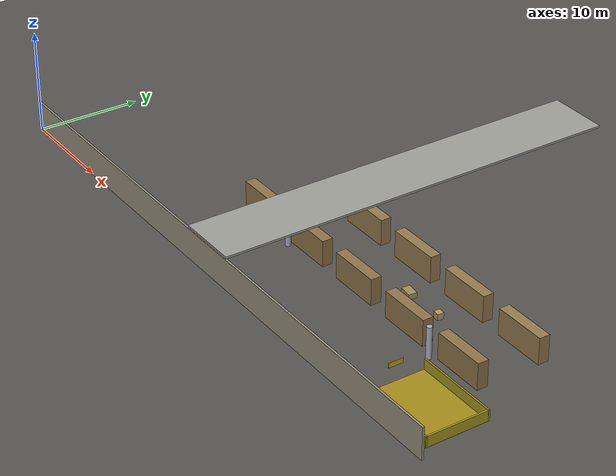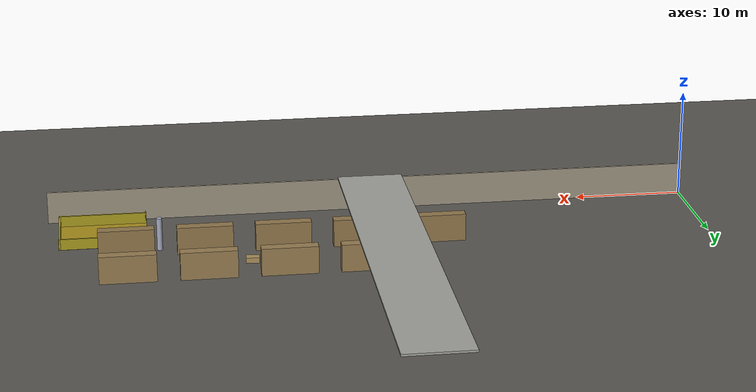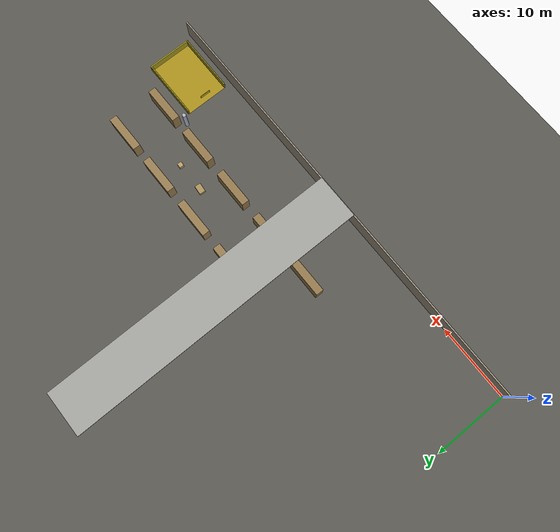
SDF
<sdf version="1.8">
 <world name="warehouse">
  <model name="ground_plane">
   <static>true</static>
   <link name="link">
    <collision name="c">
     <geometry><plane><normal>0 0 1</normal><size>80 60</size></plane></geometry>
     <surface>
      <friction>
       <ode><mu>0.6</mu><mu2>0.5</mu2><slip1>0.003</slip1><slip2>0.003</slip2><fdir1>1 0 0</fdir1></ode>
      </friction>
      <contact><ode><kp>1e6</kp><kd>100.0</kd><max_vel>0.1</max_vel><min_depth>0.001</min_depth></ode></contact>
     </surface>
    </collision>
    <visual name="v">
     <geometry><plane><normal>0 0 1</normal><size>80 60</size></plane></geometry>
     <material><ambient>0.32 0.31 0.29 1</ambient><diffuse>0.34 0.33 0.31 1</diffuse></material>
    </visual>
   </link>
  </model>
  <model name="wall_south">
   <static>true</static>
   <pose>30 0 1.5 0 0 0</pose>
   <link name="link">
    <collision name="c"><geometry><box><size>60 0.2 3.0</size></box></geometry></collision>
    <visual name="v">
     <geometry><box><size>60 0.2 3.0</size></box></geometry>
     <material><ambient>0.58 0.55 0.48 1</ambient><diffuse>0.60 0.57 0.50 1</diffuse></material>
    </visual>
   </link>
  </model>
  <model name="col_s2">
   <static>true</static>
   <pose>30 8 1.5 0 0 0</pose>
   <link name="link">
    <collision name="c">
     <geometry><cylinder><radius>0.25</radius><length>3.0</length></cylinder></geometry>
    </collision>
    <visual name="v">
     <geometry><cylinder><radius>0.25</radius><length>3.0</length></cylinder></geometry>
     <material><ambient>0.60 0.62 0.70 1</ambient><diffuse>0.65 0.67 0.75 1</diffuse></material>
    </visual>
   </link>
  </model>
  <model name="col_s3">
   <static>true</static>
   <pose>50 8 1.5 0 0 0</pose>
   <link name="link">
    <collision name="c">
     <geometry><cylinder><radius>0.25</radius><length>3.0</length></cylinder></geometry>
    </collision>
    <visual name="v">
     <geometry><cylinder><radius>0.25</radius><length>3.0</length></cylinder></geometry>
     <material><ambient>0.60 0.62 0.70 1</ambient><diffuse>0.65 0.67 0.75 1</diffuse></material>
    </visual>
   </link>
  </model>
  <model name="rack_B4">
   <static>true</static>
   <pose>32 15 1.25 0 0 0</pose>
   <link name="link">
    <collision name="c"><geometry><box><size>5.0 1.0 2.5</size></box></geometry></collision>
    <visual name="v">
     <geometry><box><size>5.0 1.0 2.5</size></box></geometry>
     <material><ambient>0.50 0.40 0.26 1</ambient><diffuse>0.58 0.48 0.31 1</diffuse></material>
    </visual>
   </link>
  </model>
  <model name="rack_B5">
   <static>true</static>
   <pose>39 15 1.25 0 0 0</pose>
   <link name="link">
    <collision name="c"><geometry><box><size>5.0 1.0 2.5</size></box></geometry></collision>
    <visual name="v">
     <geometry><box><size>5.0 1.0 2.5</size></box></geometry>
     <material><ambient>0.50 0.40 0.26 1</ambient><diffuse>0.58 0.48 0.31 1</diffuse></material>
    </visual>
   </link>
  </model>
  <model name="rack_B6">
   <static>true</static>
   <pose>46 15 1.25 0 0 0</pose>
   <link name="link">
    <collision name="c"><geometry><box><size>5.0 1.0 2.5</size></box></geometry></collision>
    <visual name="v">
     <geometry><box><size>5.0 1.0 2.5</size></box></geometry>
     <material><ambient>0.50 0.40 0.26 1</ambient><diffuse>0.58 0.48 0.31 1</diffuse></material>
    </visual>
   </link>
  </model>
  <model name="rack_B7">
   <static>true</static>
   <pose>53 15 1.25 0 0 0</pose>
   <link name="link">
    <collision name="c"><geometry><box><size>5.0 1.0 2.5</size></box></geometry></collision>
    <visual name="v">
     <geometry><box><size>5.0 1.0 2.5</size></box></geometry>
     <material><ambient>0.50 0.40 0.26 1</ambient><diffuse>0.58 0.48 0.31 1</diffuse></material>
    </visual>
   </link>
  </model>
  <model name="rack_C3">
   <static>true</static>
   <pose>25 9 1.25 0 0 0</pose>
   <link name="link">
    <collision name="c"><geometry><box><size>5.0 1.0 2.5</size></box></geometry></collision>
    <visual name="v">
     <geometry><box><size>5.0 1.0 2.5</size></box></geometry>
     <material><ambient>0.48 0.38 0.24 1</ambient><diffuse>0.56 0.46 0.29 1</diffuse></material>
    </visual>
   </link>
  </model>
  <model name="rack_C4">
   <static>true</static>
   <pose>32 9 1.25 0 0 0</pose>
   <link name="link">
    <collision name="c"><geometry><box><size>5.0 1.0 2.5</size></box></geometry></collision>
    <visual name="v">
     <geometry><box><size>5.0 1.0 2.5</size></box></geometry>
     <material><ambient>0.48 0.38 0.24 1</ambient><diffuse>0.56 0.46 0.29 1</diffuse></material>
    </visual>
   </link>
  </model>
  <model name="rack_C5">
   <static>true</static>
   <pose>39 9 1.25 0 0 0</pose>
   <link name="link">
    <collision name="c"><geometry><box><size>5.0 1.0 2.5</size></box></geometry></collision>
    <visual name="v">
     <geometry><box><size>5.0 1.0 2.5</size></box></geometry>
     <material><ambient>0.48 0.38 0.24 1</ambient><diffuse>0.56 0.46 0.29 1</diffuse></material>
    </visual>
   </link>
  </model>
  <model name="rack_C6">
   <static>true</static>
   <pose>46 9 1.25 0 0 0</pose>
   <link name="link">
    <collision name="c"><geometry><box><size>5.0 1.0 2.5</size></box></geometry></collision>
    <visual name="v">
     <geometry><box><size>5.0 1.0 2.5</size></box></geometry>
     <material><ambient>0.48 0.38 0.24 1</ambient><diffuse>0.56 0.46 0.29 1</diffuse></material>
    </visual>
   </link>
  </model>
  <model name="rack_C7">
   <static>true</static>
   <pose>53 9 1.25 0 0 0</pose>
   <link name="link">
    <collision name="c"><geometry><box><size>5.0 1.0 2.5</size></box></geometry></collision>
    <visual name="v">
     <geometry><box><size>5.0 1.0 2.5</size></box></geometry>
     <material><ambient>0.48 0.38 0.24 1</ambient><diffuse>0.56 0.46 0.29 1</diffuse></material>
    </visual>
   </link>
  </model>
  <model name="waiting_floor">
   <static>true</static>
   <pose>55 4 0.002 0 0 0</pose>
   <link name="link">
    <visual name="v">
     <geometry><box><size>8 6 0.002</size></box></geometry>
     <material><ambient>0.55 0.45 0.08 0.9</ambient><diffuse>0.65 0.55 0.10 0.9</diffuse></material>
    </visual>
   </link>
  </model>
  <model name="waiting_fence_e">
   <static>true</static>
   <pose>58.9 4 0.5 0 0 0</pose>
   <link name="link">
    <collision name="c"><geometry><box><size>0.15 6 1.0</size></box></geometry></collision>
    <visual name="v">
     <geometry><box><size>0.15 6 1.0</size></box></geometry>
     <material><ambient>0.55 0.50 0.10 1</ambient><diffuse>0.65 0.60 0.12 1</diffuse></material>
    </visual>
   </link>
  </model>
  <model name="waiting_fence_s">
   <static>true</static>
   <pose>55 1.1 0.5 0 0 0</pose>
   <link name="link">
    <collision name="c"><geometry><box><size>8 0.15 1.0</size></box></geometry></collision>
    <visual name="v">
     <geometry><box><size>8 0.15 1.0</size></box></geometry>
     <material><ambient>0.55 0.50 0.10 1</ambient><diffuse>0.65 0.60 0.12 1</diffuse></material>
    </visual>
   </link>
  </model>
  <model name="waiting_fence_n">
   <static>true</static>
   <pose>55 6.9 0.5 0 0 0</pose>
   <link name="link">
    <collision name="c"><geometry><box><size>8 0.15 1.0</size></box></geometry></collision>
    <visual name="v">
     <geometry><box><size>8 0.15 1.0</size></box></geometry>
     <material><ambient>0.55 0.50 0.10 1</ambient><diffuse>0.65 0.60 0.12 1</diffuse></material>
    </visual>
   </link>
  </model>
  <model name="sign_waiting">
   <static>true</static>
   <pose>51.1 4 1.8 0 0 0</pose>
   <link name="link">
    <collision name="c"><geometry><box><size>0.06 1.4 0.45</size></box></geometry></collision>
    <visual name="v">
     <geometry><box><size>0.06 1.4 0.45</size></box></geometry>
     <material><ambient>0.65 0.55 0.10 1</ambient><diffuse>0.75 0.65 0.12 1</diffuse></material>
    </visual>
   </link>
  </model>
  <model name="pallet_2">
   <static>true</static>
   <pose>42 12 0.25 0 0 -0.10</pose>
   <link name="link">
    <collision name="c"><geometry><box><size>1.2 0.8 0.5</size></box></geometry></collision>
    <visual name="v">
     <geometry><box><size>1.2 0.8 0.5</size></box></geometry>
     <material><ambient>0.60 0.50 0.30 1</ambient><diffuse>0.65 0.55 0.35 1</diffuse></material>
    </visual>
   </link>
  </model>
  <model name="box_stack_1">
   <static>true</static>
   <pose>28 18 0.30 0 0 0.05</pose>
   <link name="link">
    <collision name="c"><geometry><box><size>0.6 0.6 0.6</size></box></geometry></collision>
    <visual name="v">
     <geometry><box><size>0.6 0.6 0.6</size></box></geometry>
     <material><ambient>0.65 0.55 0.35 1</ambient><diffuse>0.70 0.60 0.40 1</diffuse></material>
    </visual>
   </link>
  </model>
  <model name="box_stack_2">
   <static>true</static>
   <pose>46 12 0.30 0 0 -0.08</pose>
   <link name="link">
    <collision name="c"><geometry><box><size>0.6 0.6 0.6</size></box></geometry></collision>
    <visual name="v">
     <geometry><box><size>0.6 0.6 0.6</size></box></geometry>
     <material><ambient>0.65 0.55 0.35 1</ambient><diffuse>0.70 0.60 0.40 1</diffuse></material>
    </visual>
   </link>
  </model>
  <model name="ceiling_light_slot">
   <static>true</static>
   <pose>30 20 3.1 0 0 0</pose>
   <link name="link">
    <visual name="v">
     <geometry><box><size>6 40 0.2</size></box></geometry>
     <material><ambient>0.60 0.60 0.58 1</ambient><diffuse>0.62 0.62 0.60 1</diffuse></material>
    </visual>
   </link>
  </model>
 </world>
</sdf>
